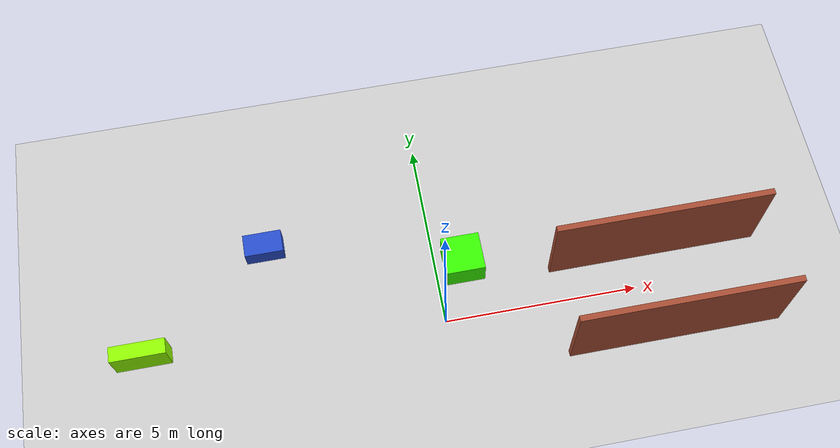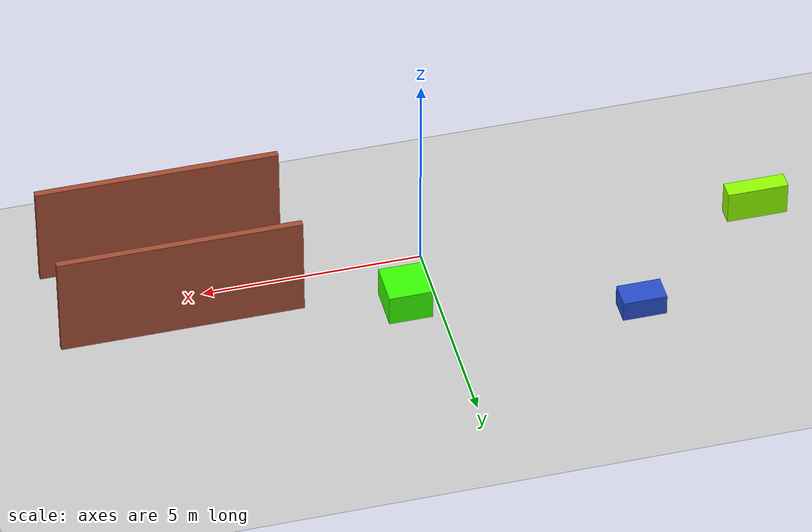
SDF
<sdf version="1.7">
 <world name="default">
  <light name="sun" type="directional">
   <pose>0 0 10 0 -0 0</pose>
   <diffuse>0.8 0.8 0.8 1</diffuse>
   <specular>0.2 0.2 0.2 1</specular>
   <attenuation>
    <range>1000</range>
    <constant>0.9</constant>
    <linear>0.01</linear>
    <quadratic>0.001</quadratic>
   </attenuation>
   <direction>-0.5 0.1 -0.9</direction>
   <spot><inner_angle>0</inner_angle><outer_angle>0</outer_angle><falloff>0</falloff></spot>
  </light>
  <model name="ground_plane">
   <static>1</static>
   <link name="link">
    <collision name="collision">
     <geometry><plane><normal>0 0 1</normal><size>100 100</size></plane></geometry>
     <surface>
      <contact><collide_bitmask>65535</collide_bitmask></contact>
      <friction><ode><mu>100</mu><mu2>50</mu2></ode></friction>
     </surface>
    </collision>
    <visual name="visual">
     <cast_shadows>0</cast_shadows>
     <geometry><plane><normal>0 0 1</normal><size>100 100</size></plane></geometry>
     <material>
      <script><uri>file://media/materials/scripts/gazebo.material</uri><name>Gazebo/Grey</name></script>
     </material>
    </visual>
   </link>
  </model>
  <gravity>0 0 -9.8</gravity>
  <magnetic_field>6e-06 2.3e-05 -4.2e-05</magnetic_field>
  <atmosphere type="adiabatic"/>
  <physics type="ode">
   <max_step_size>0.001</max_step_size>
   <real_time_factor>1</real_time_factor>
   <real_time_update_rate>1000</real_time_update_rate>
  </physics>
  <scene><ambient>0.4 0.4 0.4 1</ambient><background>0.7 0.7 0.7 1</background><shadows>1</shadows></scene>
  <spherical_coordinates>
   <surface_model>EARTH_WGS84</surface_model>
   <latitude_deg>0</latitude_deg>
   <longitude_deg>0</longitude_deg>
   <elevation>0</elevation>
   <heading_deg>0</heading_deg>
  </spherical_coordinates>
  <model name="korytarz">
   <pose>5.65925 0.393227 0 0 -0 0</pose>
   <link name="Wall_0">
    <collision name="Wall_0_Collision">
     <geometry><box><size>5.5 0.15 2.5</size></box></geometry>
     <pose>0 0 1.25 0 -0 0</pose>
    </collision>
    <visual name="Wall_0_Visual">
     <pose>0 0 1.25 0 -0 0</pose>
     <geometry><box><size>5.5 0.15 2.5</size></box></geometry>
     <material>
      <script><uri>file://media/materials/scripts/gazebo.material</uri><name>Gazebo/Bricks</name></script>
      <ambient>1 1 1 1</ambient>
     </material>
     <meta><layer>0</layer></meta>
    </visual>
    <pose>-0 0.5225 0 0 -0 0</pose>
   </link>
   <link name="Wall_3">
    <collision name="Wall_3_Collision">
     <geometry><box><size>5.5 0.15 2.5</size></box></geometry>
     <pose>0 0 1.25 0 -0 0</pose>
    </collision>
    <visual name="Wall_3_Visual">
     <pose>0 0 1.25 0 -0 0</pose>
     <geometry><box><size>5.5 0.15 2.5</size></box></geometry>
     <material>
      <script><uri>file://media/materials/scripts/gazebo.material</uri><name>Gazebo/Bricks</name></script>
      <ambient>1 1 1 1</ambient>
     </material>
     <meta><layer>0</layer></meta>
    </visual>
    <pose>-0 -1.8275 0 0 -0 0</pose>
   </link>
   <static>1</static>
  </model>
  <model name="table_0">
   <link name="link">
    <inertial>
     <mass>1</mass>
     <inertia>
      <ixx>0.166667</ixx>
      <ixy>0</ixy>
      <ixz>0</ixz>
      <iyy>0.166667</iyy>
      <iyz>0</iyz>
      <izz>0.166667</izz>
     </inertia>
    </inertial>
    <pose>1e-06 0 0 0 -0 0</pose>
    <visual name="visual">
     <geometry><box><size>1 0.6 0.5</size></box></geometry>
     <material>
      <lighting>1</lighting>
      <script><uri>file://media/materials/scripts/gazebo.material</uri><name>Gazebo/Blue</name></script>
      <shader type="pixel"><normal_map>__default__</normal_map></shader>
      <ambient>0.251 1 0.914 1</ambient>
      <diffuse>0.251 1 0.914 1</diffuse>
      <specular>0.251 1 0.914 1</specular>
      <emissive>0.251 1 0.914 1</emissive>
     </material>
    </visual>
    <collision name="collision">
     <geometry><box><size>1 0.6 0.5</size></box></geometry>
     <surface>
      <friction>
       <ode><mu>1</mu><mu2>1</mu2><fdir1>0 0 0</fdir1><slip1>0</slip1><slip2>0</slip2></ode>
       <torsional>
        <coefficient>1</coefficient>
        <patch_radius>0</patch_radius>
        <surface_radius>0</surface_radius>
        <use_patch_radius>1</use_patch_radius>
        <ode><slip>0</slip></ode>
       </torsional>
      </friction>
      <bounce><restitution_coefficient>0</restitution_coefficient><threshold>1e+06</threshold></bounce>
      <contact>
       <collide_without_contact>0</collide_without_contact>
       <collide_without_contact_bitmask>1</collide_without_contact_bitmask>
       <collide_bitmask>1</collide_bitmask>
       <ode>
        <soft_cfm>0</soft_cfm>
        <soft_erp>0.2</soft_erp>
        <kp>1e+13</kp>
        <kd>1</kd>
        <max_vel>0.01</max_vel>
        <min_depth>0</min_depth>
       </ode>
       <bullet>
        <split_impulse>1</split_impulse>
        <split_impulse_penetration_threshold>-0.01</split_impulse_penetration_threshold>
        <soft_cfm>0</soft_cfm>
        <soft_erp>0.2</soft_erp>
        <kp>1e+13</kp>
        <kd>1</kd>
       </bullet>
      </contact>
     </surface>
    </collision>
   </link>
   <static>1</static>
   <pose>-4.31989 2.84109 0.265 0 -0 0</pose>
  </model>
  <model name="table_1">
   <link name="link">
    <inertial>
     <mass>1</mass>
     <inertia>
      <ixx>0.166667</ixx>
      <ixy>0</ixy>
      <ixz>0</ixz>
      <iyy>0.166667</iyy>
      <iyz>0</iyz>
      <izz>0.166667</izz>
     </inertia>
    </inertial>
    <visual name="visual">
     <geometry><box><size>1.4 0.4 0.8</size></box></geometry>
     <material>
      <lighting>1</lighting>
      <script><uri>file://media/materials/scripts/gazebo.material</uri><name>Gazebo/Grey</name></script>
      <shader type="pixel"><normal_map>__default__</normal_map></shader>
      <ambient>0.569 1 0 1</ambient>
      <diffuse>0.569 1 0 1</diffuse>
      <specular>0.569 1 0 1</specular>
      <emissive>0.569 1 0 1</emissive>
     </material>
    </visual>
    <collision name="collision">
     <geometry><box><size>1.4 0.4 0.8</size></box></geometry>
     <surface>
      <friction>
       <ode><mu>1</mu><mu2>1</mu2><fdir1>0 0 0</fdir1><slip1>0</slip1><slip2>0</slip2></ode>
       <torsional>
        <coefficient>1</coefficient>
        <patch_radius>0</patch_radius>
        <surface_radius>0</surface_radius>
        <use_patch_radius>1</use_patch_radius>
        <ode><slip>0</slip></ode>
       </torsional>
      </friction>
      <bounce><restitution_coefficient>0</restitution_coefficient><threshold>1e+06</threshold></bounce>
      <contact>
       <collide_without_contact>0</collide_without_contact>
       <collide_without_contact_bitmask>1</collide_without_contact_bitmask>
       <collide_bitmask>1</collide_bitmask>
       <ode>
        <soft_cfm>0</soft_cfm>
        <soft_erp>0.2</soft_erp>
        <kp>1e+13</kp>
        <kd>1</kd>
        <max_vel>0.01</max_vel>
        <min_depth>0</min_depth>
       </ode>
       <bullet>
        <split_impulse>1</split_impulse>
        <split_impulse_penetration_threshold>-0.01</split_impulse_penetration_threshold>
        <soft_cfm>0</soft_cfm>
        <soft_erp>0.2</soft_erp>
        <kp>1e+13</kp>
        <kd>1</kd>
       </bullet>
      </contact>
     </surface>
    </collision>
   </link>
   <static>1</static>
   <pose>-7.67381 0.398058 0.415 0 -0 0</pose>
  </model>
  <model name="table_2">
   <link name="link">
    <inertial>
     <mass>1</mass>
     <inertia>
      <ixx>0.166667</ixx>
      <ixy>0</ixy>
      <ixz>0</ixz>
      <iyy>0.166667</iyy>
      <iyz>0</iyz>
      <izz>0.166667</izz>
     </inertia>
    </inertial>
    <visual name="visual">
     <geometry><box><size>1 1 0.75</size></box></geometry>
     <material>
      <lighting>1</lighting>
      <script><uri>file://media/materials/scripts/gazebo.material</uri><name>Gazebo/Grey</name></script>
      <shader type="pixel"><normal_map>__default__</normal_map></shader>
      <ambient>0.216 1 0 1</ambient>
      <diffuse>0.216 1 0 1</diffuse>
      <specular>0.216 1 0 1</specular>
      <emissive>0.216 1 0 1</emissive>
     </material>
    </visual>
    <collision name="collision">
     <geometry><box><size>1 1 0.75</size></box></geometry>
     <surface>
      <friction>
       <ode><mu>1</mu><mu2>1</mu2><fdir1>0 0 0</fdir1><slip1>0</slip1><slip2>0</slip2></ode>
       <torsional>
        <coefficient>1</coefficient>
        <patch_radius>0</patch_radius>
        <surface_radius>0</surface_radius>
        <use_patch_radius>1</use_patch_radius>
        <ode><slip>0</slip></ode>
       </torsional>
      </friction>
      <bounce><restitution_coefficient>0</restitution_coefficient><threshold>1e+06</threshold></bounce>
      <contact>
       <collide_without_contact>0</collide_without_contact>
       <collide_without_contact_bitmask>1</collide_without_contact_bitmask>
       <collide_bitmask>1</collide_bitmask>
       <ode>
        <soft_cfm>0</soft_cfm>
        <soft_erp>0.2</soft_erp>
        <kp>1e+13</kp>
        <kd>1</kd>
        <max_vel>0.01</max_vel>
        <min_depth>0</min_depth>
       </ode>
       <bullet>
        <split_impulse>1</split_impulse>
        <split_impulse_penetration_threshold>-0.01</split_impulse_penetration_threshold>
        <soft_cfm>0</soft_cfm>
        <soft_erp>0.2</soft_erp>
        <kp>1e+13</kp>
        <kd>1</kd>
       </bullet>
      </contact>
     </surface>
    </collision>
   </link>
   <static>1</static>
   <pose>0.71986 1.47644 0.39 0 -0 0</pose>
  </model>
 </world>
</sdf>
